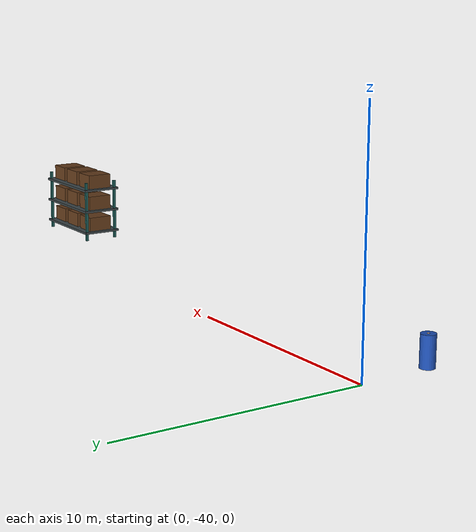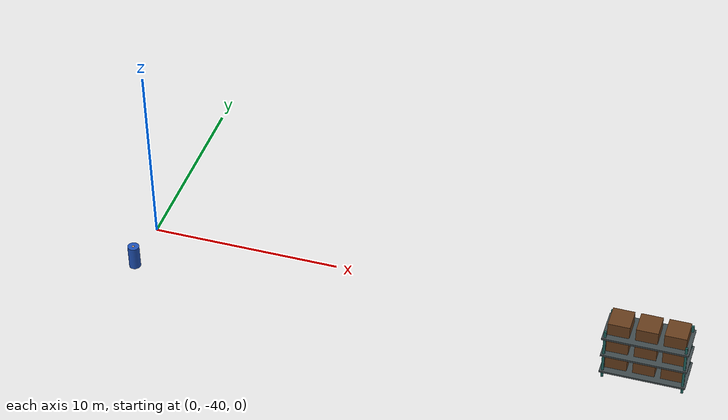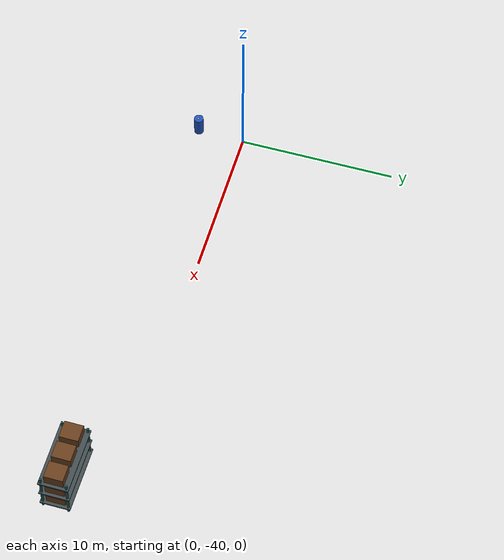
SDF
<sdf version="1.9">
 <world name="fleetscope_estate">
  <model name="warehouse_rack_27">
   <static>true</static>
   <pose>27 -43 0 0 0 0</pose>
   <link name="structure">
    <visual name="visual_0">
     <pose>-2 -0.8 1.5 0 0 0</pose>
     <geometry><box><size>0.12 0.12 3</size></box></geometry>
     <material>
      <ambient>0.12 0.38 0.36 1</ambient>
      <diffuse>0.12 0.38 0.36 1</diffuse>
      <specular>.08 .08 .08 1</specular>
     </material>
    </visual>
    <collision name="collision_0">
     <pose>-2 -0.8 1.5 0 0 0</pose>
     <geometry><box><size>0.12 0.12 3</size></box></geometry>
    </collision>
    <visual name="visual_1">
     <pose>-2 0.8 1.5 0 0 0</pose>
     <geometry><box><size>0.12 0.12 3</size></box></geometry>
     <material>
      <ambient>0.12 0.38 0.36 1</ambient>
      <diffuse>0.12 0.38 0.36 1</diffuse>
      <specular>.08 .08 .08 1</specular>
     </material>
    </visual>
    <collision name="collision_1">
     <pose>-2 0.8 1.5 0 0 0</pose>
     <geometry><box><size>0.12 0.12 3</size></box></geometry>
    </collision>
    <visual name="visual_2">
     <pose>2 -0.8 1.5 0 0 0</pose>
     <geometry><box><size>0.12 0.12 3</size></box></geometry>
     <material>
      <ambient>0.12 0.38 0.36 1</ambient>
      <diffuse>0.12 0.38 0.36 1</diffuse>
      <specular>.08 .08 .08 1</specular>
     </material>
    </visual>
    <collision name="collision_2">
     <pose>2 -0.8 1.5 0 0 0</pose>
     <geometry><box><size>0.12 0.12 3</size></box></geometry>
    </collision>
    <visual name="visual_3">
     <pose>2 0.8 1.5 0 0 0</pose>
     <geometry><box><size>0.12 0.12 3</size></box></geometry>
     <material>
      <ambient>0.12 0.38 0.36 1</ambient>
      <diffuse>0.12 0.38 0.36 1</diffuse>
      <specular>.08 .08 .08 1</specular>
     </material>
    </visual>
    <collision name="collision_3">
     <pose>2 0.8 1.5 0 0 0</pose>
     <geometry><box><size>0.12 0.12 3</size></box></geometry>
    </collision>
    <visual name="visual_4">
     <pose>0 0 0.4 0 0 0</pose>
     <geometry><box><size>4.3 1.9 0.1</size></box></geometry>
     <material>
      <ambient>0.25 0.29 0.3 1</ambient>
      <diffuse>0.25 0.29 0.3 1</diffuse>
      <specular>.08 .08 .08 1</specular>
     </material>
     <cast_shadows>false</cast_shadows>
    </visual>
    <collision name="collision_4">
     <pose>0 0 0.4 0 0 0</pose>
     <geometry><box><size>4.3 1.9 0.1</size></box></geometry>
    </collision>
    <visual name="visual_5">
     <pose>-1.4 0 0.8 0 0 0</pose>
     <geometry><box><size>1.1 1.2 0.7</size></box></geometry>
     <material>
      <ambient>0.4 0.24 0.11 1</ambient>
      <diffuse>0.4 0.24 0.11 1</diffuse>
      <specular>.08 .08 .08 1</specular>
     </material>
    </visual>
    <collision name="collision_5">
     <pose>-1.4 0 0.8 0 0 0</pose>
     <geometry><box><size>1.1 1.2 0.7</size></box></geometry>
    </collision>
    <visual name="visual_6">
     <pose>0 0 0.8 0 0 0</pose>
     <geometry><box><size>1.1 1.2 0.7</size></box></geometry>
     <material>
      <ambient>0.4 0.24 0.11 1</ambient>
      <diffuse>0.4 0.24 0.11 1</diffuse>
      <specular>.08 .08 .08 1</specular>
     </material>
    </visual>
    <collision name="collision_6">
     <pose>0 0 0.8 0 0 0</pose>
     <geometry><box><size>1.1 1.2 0.7</size></box></geometry>
    </collision>
    <visual name="visual_7">
     <pose>1.4 0 0.8 0 0 0</pose>
     <geometry><box><size>1.1 1.2 0.7</size></box></geometry>
     <material>
      <ambient>0.4 0.24 0.11 1</ambient>
      <diffuse>0.4 0.24 0.11 1</diffuse>
      <specular>.08 .08 .08 1</specular>
     </material>
    </visual>
    <collision name="collision_7">
     <pose>1.4 0 0.8 0 0 0</pose>
     <geometry><box><size>1.1 1.2 0.7</size></box></geometry>
    </collision>
    <visual name="visual_8">
     <pose>0 0 1.5 0 0 0</pose>
     <geometry><box><size>4.3 1.9 0.1</size></box></geometry>
     <material>
      <ambient>0.25 0.29 0.3 1</ambient>
      <diffuse>0.25 0.29 0.3 1</diffuse>
      <specular>.08 .08 .08 1</specular>
     </material>
     <cast_shadows>false</cast_shadows>
    </visual>
    <collision name="collision_8">
     <pose>0 0 1.5 0 0 0</pose>
     <geometry><box><size>4.3 1.9 0.1</size></box></geometry>
    </collision>
    <visual name="visual_9">
     <pose>-1.4 0 1.9 0 0 0</pose>
     <geometry><box><size>1.1 1.2 0.7</size></box></geometry>
     <material>
      <ambient>0.4 0.24 0.11 1</ambient>
      <diffuse>0.4 0.24 0.11 1</diffuse>
      <specular>.08 .08 .08 1</specular>
     </material>
    </visual>
    <collision name="collision_9">
     <pose>-1.4 0 1.9 0 0 0</pose>
     <geometry><box><size>1.1 1.2 0.7</size></box></geometry>
    </collision>
    <visual name="visual_10">
     <pose>0 0 1.9 0 0 0</pose>
     <geometry><box><size>1.1 1.2 0.7</size></box></geometry>
     <material>
      <ambient>0.4 0.24 0.11 1</ambient>
      <diffuse>0.4 0.24 0.11 1</diffuse>
      <specular>.08 .08 .08 1</specular>
     </material>
    </visual>
    <collision name="collision_10">
     <pose>0 0 1.9 0 0 0</pose>
     <geometry><box><size>1.1 1.2 0.7</size></box></geometry>
    </collision>
    <visual name="visual_11">
     <pose>1.4 0 1.9 0 0 0</pose>
     <geometry><box><size>1.1 1.2 0.7</size></box></geometry>
     <material>
      <ambient>0.4 0.24 0.11 1</ambient>
      <diffuse>0.4 0.24 0.11 1</diffuse>
      <specular>.08 .08 .08 1</specular>
     </material>
    </visual>
    <collision name="collision_11">
     <pose>1.4 0 1.9 0 0 0</pose>
     <geometry><box><size>1.1 1.2 0.7</size></box></geometry>
    </collision>
    <visual name="visual_12">
     <pose>0 0 2.6 0 0 0</pose>
     <geometry><box><size>4.3 1.9 0.1</size></box></geometry>
     <material>
      <ambient>0.25 0.29 0.3 1</ambient>
      <diffuse>0.25 0.29 0.3 1</diffuse>
      <specular>.08 .08 .08 1</specular>
     </material>
     <cast_shadows>false</cast_shadows>
    </visual>
    <collision name="collision_12">
     <pose>0 0 2.6 0 0 0</pose>
     <geometry><box><size>4.3 1.9 0.1</size></box></geometry>
    </collision>
    <visual name="visual_13">
     <pose>-1.4 0 3 0 0 0</pose>
     <geometry><box><size>1.1 1.2 0.7</size></box></geometry>
     <material>
      <ambient>0.4 0.24 0.11 1</ambient>
      <diffuse>0.4 0.24 0.11 1</diffuse>
      <specular>.08 .08 .08 1</specular>
     </material>
    </visual>
    <collision name="collision_13">
     <pose>-1.4 0 3 0 0 0</pose>
     <geometry><box><size>1.1 1.2 0.7</size></box></geometry>
    </collision>
    <visual name="visual_14">
     <pose>0 0 3 0 0 0</pose>
     <geometry><box><size>1.1 1.2 0.7</size></box></geometry>
     <material>
      <ambient>0.4 0.24 0.11 1</ambient>
      <diffuse>0.4 0.24 0.11 1</diffuse>
      <specular>.08 .08 .08 1</specular>
     </material>
    </visual>
    <collision name="collision_14">
     <pose>0 0 3 0 0 0</pose>
     <geometry><box><size>1.1 1.2 0.7</size></box></geometry>
    </collision>
    <visual name="visual_15">
     <pose>1.4 0 3 0 0 0</pose>
     <geometry><box><size>1.1 1.2 0.7</size></box></geometry>
     <material>
      <ambient>0.4 0.24 0.11 1</ambient>
      <diffuse>0.4 0.24 0.11 1</diffuse>
      <specular>.08 .08 .08 1</specular>
     </material>
    </visual>
    <collision name="collision_15">
     <pose>1.4 0 3 0 0 0</pose>
     <geometry><box><size>1.1 1.2 0.7</size></box></geometry>
    </collision>
   </link>
  </model>
  <include>
   <uri>model://fleetscope_player</uri>
   <name>fleetscope_player</name>
   <pose>0 -43 0.75 0 0 0</pose>
  </include>
 </world>
</sdf>
